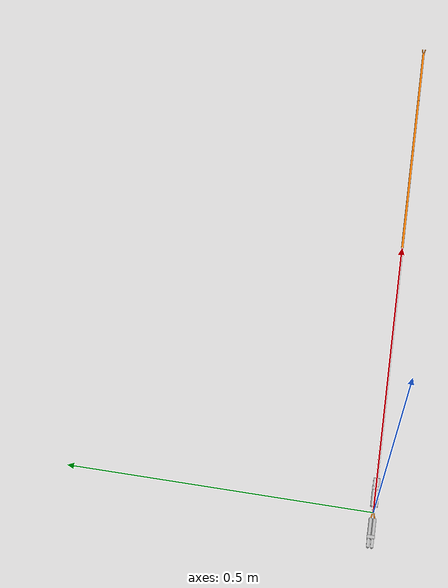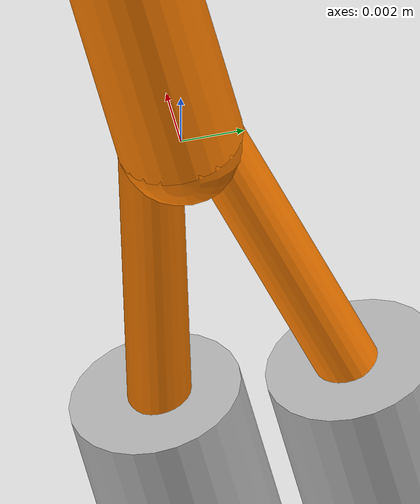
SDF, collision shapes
<?xml version="1.0" ?>
<sdf version="1.9">
  <model name="sfp_cable">
    <include merge="true">
      <uri>model://cable_base_a</uri>
    </include>
    <include>
      <name>plug_a</name>
      <uri>model://SFP Plug</uri>
      <pose relative_to="cable_connection_0">-0.038 0 0 0 0 1.57079</pose>
    </include>
    <include>
      <name>plug_b</name>
      <uri>model://SFP Plug</uri>
      <pose relative_to="cable_connection_1">0.038 0 0 0 0 -1.57079</pose>
    </include>
    <joint name="plug_0_joint" type="fixed">
      <parent>cable_connection_0</parent>
      <child>plug_a::sfp_plug_link</child>
    </joint>
    <joint name="plug_1_joint" type="fixed">
      <parent>cable_connection_1</parent>
      <child>plug_b::sfp_plug_link</child>
    </joint>
  </model>
</sdf>

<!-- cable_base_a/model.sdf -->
<!--
  THIS FILE IS AUTO-GENERATED FROM AN ERB TEMPLATE

  see instructions in 'path_to_ws/src/aic/aic_assets/scripts/cable.sdf.erb'
-->
<sdf version="1.9">
  <model name="cable">
    <link name="cable_end_0">
      <pose>0.000000 0.000000 0.000000 0.000000 -0.000000 0.000000</pose>
      <inertial>
        <pose>0.000000 0.000000 0.000000 0.000000 -0.000000 0.000000</pose>
        <mass>0.0375</mass>
        <inertia>
          <ixx>0.010000</ixx>
          <ixy>0.000000</ixy>
          <ixz>0.000000</ixz>
          <iyy>0.010000</iyy>
          <iyz>0.000000</iyz>
          <izz>0.010000</izz>
        </inertia>
      </inertial>
      <collision name="base_collision">
        <pose>0.000000 0.000000 0.000000 0.000000 0.000000 0.000000</pose>
        <geometry>
          <sphere>
            <radius>0.002</radius>
          </sphere>
        </geometry>
      </collision>
      <visual name="base_vis">
        <pose>0.000000 0.000000 0.000000 0.000000 0.000000 0.000000</pose>
        <geometry>
          <sphere>
            <radius>0.002</radius>
          </sphere>
        </geometry>
        <material>
          <diffuse>1.0 0.5 0.0</diffuse>
          <specular>0.2 0.2 0.2</specular>
          <pbr>
            <metal>
              <roughness>0.05</roughness>
              <metalness>0.01</metalness>
            </metal>
          </pbr>
        </material>
      </visual>
    </link>
    <joint name="joint_end_0" type="ball">
      <pose>0.00000 0.000000 -0.06 0.000000 0 0.000000</pose>
      <child>link_1</child>
      <parent>cable_end_0</parent>
      <axis>
        <dynamics>
          <damping>1.0</damping>
          <spring_stiffness>1.0</spring_stiffness>
        </dynamics>
      </axis>
    </joint>
    <link name="link_1">
      <pose>0.06 0.000000 0.000000 0.000000 1.570790 0.000000</pose>
      <inertial>
        <pose>0.000000 0.000000 0.000000 0.000000 -0.000000 0.000000</pose>
        <mass>0.0375</mass>
        <inertia>
          <ixx>0.010000</ixx>
          <ixy>0.000000</ixy>
          <ixz>0.000000</ixz>
          <iyy>0.010000</iyy>
          <iyz>0.000000</iyz>
          <izz>0.010000</izz>
        </inertia>
      </inertial>
      <collision name="link_1_collision">
        <pose>0.00000 0.000000 0.000000 0.000000 0 0.000000</pose>
        <geometry>
          <cylinder>
            <length>0.12</length>
            <radius>0.002</radius>
          </cylinder>
        </geometry>
      </collision>
      <visual name="link_1_vis">
        <pose>0.00000 0.000000 0.000000 0.000000 0 0.000000</pose>
        <geometry>
          <cylinder>
            <length>0.12</length>
            <radius>0.002</radius>
          </cylinder>
        </geometry>
        <material>
          <diffuse>1.0 0.5 0.0</diffuse>
          <specular>0.2 0.2 0.2</specular>
          <pbr>
            <metal>
              <roughness>0.05</roughness>
              <metalness>0.01</metalness>
            </metal>
          </pbr>
        </material>
      </visual>
      <collision name="sphere_1_collision">
        <pose>0.000000 0.000000 0.06 0.000000 -0.000000 0.000000</pose>
        <geometry>
          <sphere>
            <radius>0.002</radius>
          </sphere>
        </geometry>
      </collision>
      <visual name="sphere_1_vis">
        <pose>0.000000 0.000000 0.06 0.000000 -0.000000 0.000000</pose>
        <geometry>
          <sphere>
            <radius>0.002</radius>
          </sphere>
        </geometry>
        <material>
          <diffuse>1.0 0.5 0.0</diffuse>
          <specular>0.2 0.2 0.2</specular>
          <pbr>
            <metal>
              <roughness>0.05</roughness>
              <metalness>0.01</metalness>
            </metal>
          </pbr>
        </material>
      </visual>
    </link>
    <link name="link_2">
      <pose>0.18 0.000000 0.000000 0.000000 1.570790 0.000000</pose>
      <inertial>
        <pose>0.000000 0.000000 0.000000 0.000000 -0.000000 0.000000</pose>
        <mass>0.0375</mass>
        <inertia>
          <ixx>0.010000</ixx>
          <ixy>0.000000</ixy>
          <ixz>0.000000</ixz>
          <iyy>0.010000</iyy>
          <iyz>0.000000</iyz>
          <izz>0.010000</izz>
        </inertia>
      </inertial>
      <collision name="link_2_collision">
        <pose>0.00000 0.000000 0.000000 0.000000 0 0.000000</pose>
        <geometry>
          <cylinder>
            <length>0.12</length>
            <radius>0.002</radius>
          </cylinder>
        </geometry>
      </collision>
      <visual name="link_2_vis">
        <pose>0.00000 0.000000 0.000000 0.000000 0 0.000000</pose>
        <geometry>
          <cylinder>
            <length>0.12</length>
            <radius>0.002</radius>
          </cylinder>
        </geometry>
        <material>
          <diffuse>1.0 0.5 0.0</diffuse>
          <specular>0.2 0.2 0.2</specular>
          <pbr>
            <metal>
              <roughness>0.05</roughness>
              <metalness>0.01</metalness>
            </metal>
          </pbr>
        </material>
      </visual>
      <collision name="sphere_2_collision">
        <pose>0.000000 0.000000 0.06 0.000000 -0.000000 0.000000</pose>
        <geometry>
          <sphere>
            <radius>0.002</radius>
          </sphere>
        </geometry>
      </collision>
      <visual name="sphere_2_vis">
        <pose>0.000000 0.000000 0.06 0.000000 -0.000000 0.000000</pose>
        <geometry>
          <sphere>
            <radius>0.002</radius>
          </sphere>
        </geometry>
        <material>
          <diffuse>1.0 0.5 0.0</diffuse>
          <specular>0.2 0.2 0.2</specular>
          <pbr>
            <metal>
              <roughness>0.05</roughness>
              <metalness>0.01</metalness>
            </metal>
          </pbr>
        </material>
      </visual>
    </link>
    <link name="link_3">
      <pose>0.3 0.000000 0.000000 0.000000 1.570790 0.000000</pose>
      <inertial>
        <pose>0.000000 0.000000 0.000000 0.000000 -0.000000 0.000000</pose>
        <mass>0.0375</mass>
        <inertia>
          <ixx>0.010000</ixx>
          <ixy>0.000000</ixy>
          <ixz>0.000000</ixz>
          <iyy>0.010000</iyy>
          <iyz>0.000000</iyz>
          <izz>0.010000</izz>
        </inertia>
      </inertial>
      <collision name="link_3_collision">
        <pose>0.00000 0.000000 0.000000 0.000000 0 0.000000</pose>
        <geometry>
          <cylinder>
            <length>0.12</length>
            <radius>0.002</radius>
          </cylinder>
        </geometry>
      </collision>
      <visual name="link_3_vis">
        <pose>0.00000 0.000000 0.000000 0.000000 0 0.000000</pose>
        <geometry>
          <cylinder>
            <length>0.12</length>
            <radius>0.002</radius>
          </cylinder>
        </geometry>
        <material>
          <diffuse>1.0 0.5 0.0</diffuse>
          <specular>0.2 0.2 0.2</specular>
          <pbr>
            <metal>
              <roughness>0.05</roughness>
              <metalness>0.01</metalness>
            </metal>
          </pbr>
        </material>
      </visual>
      <collision name="sphere_3_collision">
        <pose>0.000000 0.000000 0.06 0.000000 -0.000000 0.000000</pose>
        <geometry>
          <sphere>
            <radius>0.002</radius>
          </sphere>
        </geometry>
      </collision>
      <visual name="sphere_3_vis">
        <pose>0.000000 0.000000 0.06 0.000000 -0.000000 0.000000</pose>
        <geometry>
          <sphere>
            <radius>0.002</radius>
          </sphere>
        </geometry>
        <material>
          <diffuse>1.0 0.5 0.0</diffuse>
          <specular>0.2 0.2 0.2</specular>
          <pbr>
            <metal>
              <roughness>0.05</roughness>
              <metalness>0.01</metalness>
            </metal>
          </pbr>
        </material>
      </visual>
    </link>
    <link name="link_4">
      <pose>0.42 0.000000 0.000000 0.000000 1.570790 0.000000</pose>
      <inertial>
        <pose>0.000000 0.000000 0.000000 0.000000 -0.000000 0.000000</pose>
        <mass>0.0375</mass>
        <inertia>
          <ixx>0.010000</ixx>
          <ixy>0.000000</ixy>
          <ixz>0.000000</ixz>
          <iyy>0.010000</iyy>
          <iyz>0.000000</iyz>
          <izz>0.010000</izz>
        </inertia>
      </inertial>
      <collision name="link_4_collision">
        <pose>0.00000 0.000000 0.000000 0.000000 0 0.000000</pose>
        <geometry>
          <cylinder>
            <length>0.12</length>
            <radius>0.002</radius>
          </cylinder>
        </geometry>
      </collision>
      <visual name="link_4_vis">
        <pose>0.00000 0.000000 0.000000 0.000000 0 0.000000</pose>
        <geometry>
          <cylinder>
            <length>0.12</length>
            <radius>0.002</radius>
          </cylinder>
        </geometry>
        <material>
          <diffuse>1.0 0.5 0.0</diffuse>
          <specular>0.2 0.2 0.2</specular>
          <pbr>
            <metal>
              <roughness>0.05</roughness>
              <metalness>0.01</metalness>
            </metal>
          </pbr>
        </material>
      </visual>
      <collision name="sphere_4_collision">
        <pose>0.000000 0.000000 0.06 0.000000 -0.000000 0.000000</pose>
        <geometry>
          <sphere>
            <radius>0.002</radius>
          </sphere>
        </geometry>
      </collision>
      <visual name="sphere_4_vis">
        <pose>0.000000 0.000000 0.06 0.000000 -0.000000 0.000000</pose>
        <geometry>
          <sphere>
            <radius>0.002</radius>
          </sphere>
        </geometry>
        <material>
          <diffuse>1.0 0.5 0.0</diffuse>
          <specular>0.2 0.2 0.2</specular>
          <pbr>
            <metal>
              <roughness>0.05</roughness>
              <metalness>0.01</metalness>
            </metal>
          </pbr>
        </material>
      </visual>
    </link>
    <link name="link_5">
      <pose>0.54 0.000000 0.000000 0.000000 1.570790 0.000000</pose>
      <inertial>
        <pose>0.000000 0.000000 0.000000 0.000000 -0.000000 0.000000</pose>
        <mass>0.0375</mass>
        <inertia>
          <ixx>0.010000</ixx>
          <ixy>0.000000</ixy>
          <ixz>0.000000</ixz>
          <iyy>0.010000</iyy>
          <iyz>0.000000</iyz>
          <izz>0.010000</izz>
        </inertia>
      </inertial>
      <collision name="link_5_collision">
        <pose>0.00000 0.000000 0.000000 0.000000 0 0.000000</pose>
        <geometry>
          <cylinder>
            <length>0.12</length>
            <radius>0.002</radius>
          </cylinder>
        </geometry>
      </collision>
      <visual name="link_5_vis">
        <pose>0.00000 0.000000 0.000000 0.000000 0 0.000000</pose>
        <geometry>
          <cylinder>
            <length>0.12</length>
            <radius>0.002</radius>
          </cylinder>
        </geometry>
        <material>
          <diffuse>1.0 0.5 0.0</diffuse>
          <specular>0.2 0.2 0.2</specular>
          <pbr>
            <metal>
              <roughness>0.05</roughness>
              <metalness>0.01</metalness>
            </metal>
          </pbr>
        </material>
      </visual>
      <collision name="sphere_5_collision">
        <pose>0.000000 0.000000 0.06 0.000000 -0.000000 0.000000</pose>
        <geometry>
          <sphere>
            <radius>0.002</radius>
          </sphere>
        </geometry>
      </collision>
      <visual name="sphere_5_vis">
        <pose>0.000000 0.000000 0.06 0.000000 -0.000000 0.000000</pose>
        <geometry>
          <sphere>
            <radius>0.002</radius>
          </sphere>
        </geometry>
        <material>
          <diffuse>1.0 0.5 0.0</diffuse>
          <specular>0.2 0.2 0.2</specular>
          <pbr>
            <metal>
              <roughness>0.05</roughness>
              <metalness>0.01</metalness>
            </metal>
          </pbr>
        </material>
      </visual>
    </link>
    <link name="link_6">
      <pose>0.6599999999999999 0.000000 0.000000 0.000000 1.570790 0.000000</pose>
      <inertial>
        <pose>0.000000 0.000000 0.000000 0.000000 -0.000000 0.000000</pose>
        <mass>0.0375</mass>
        <inertia>
          <ixx>0.010000</ixx>
          <ixy>0.000000</ixy>
          <ixz>0.000000</ixz>
          <iyy>0.010000</iyy>
          <iyz>0.000000</iyz>
          <izz>0.010000</izz>
        </inertia>
      </inertial>
      <collision name="link_6_collision">
        <pose>0.00000 0.000000 0.000000 0.000000 0 0.000000</pose>
        <geometry>
          <cylinder>
            <length>0.12</length>
            <radius>0.002</radius>
          </cylinder>
        </geometry>
      </collision>
      <visual name="link_6_vis">
        <pose>0.00000 0.000000 0.000000 0.000000 0 0.000000</pose>
        <geometry>
          <cylinder>
            <length>0.12</length>
            <radius>0.002</radius>
          </cylinder>
        </geometry>
        <material>
          <diffuse>1.0 0.5 0.0</diffuse>
          <specular>0.2 0.2 0.2</specular>
          <pbr>
            <metal>
              <roughness>0.05</roughness>
              <metalness>0.01</metalness>
            </metal>
          </pbr>
        </material>
      </visual>
      <collision name="sphere_6_collision">
        <pose>0.000000 0.000000 0.06 0.000000 -0.000000 0.000000</pose>
        <geometry>
          <sphere>
            <radius>0.002</radius>
          </sphere>
        </geometry>
      </collision>
      <visual name="sphere_6_vis">
        <pose>0.000000 0.000000 0.06 0.000000 -0.000000 0.000000</pose>
        <geometry>
          <sphere>
            <radius>0.002</radius>
          </sphere>
        </geometry>
        <material>
          <diffuse>1.0 0.5 0.0</diffuse>
          <specular>0.2 0.2 0.2</specular>
          <pbr>
            <metal>
              <roughness>0.05</roughness>
              <metalness>0.01</metalness>
            </metal>
          </pbr>
        </material>
      </visual>
    </link>
    <link name="link_7">
      <pose>0.78 0.000000 0.000000 0.000000 1.570790 0.000000</pose>
      <inertial>
        <pose>0.000000 0.000000 0.000000 0.000000 -0.000000 0.000000</pose>
        <mass>0.0375</mass>
        <inertia>
          <ixx>0.010000</ixx>
          <ixy>0.000000</ixy>
          <ixz>0.000000</ixz>
          <iyy>0.010000</iyy>
          <iyz>0.000000</iyz>
          <izz>0.010000</izz>
        </inertia>
      </inertial>
      <collision name="link_7_collision">
        <pose>0.00000 0.000000 0.000000 0.000000 0 0.000000</pose>
        <geometry>
          <cylinder>
            <length>0.12</length>
            <radius>0.002</radius>
          </cylinder>
        </geometry>
      </collision>
      <visual name="link_7_vis">
        <pose>0.00000 0.000000 0.000000 0.000000 0 0.000000</pose>
        <geometry>
          <cylinder>
            <length>0.12</length>
            <radius>0.002</radius>
          </cylinder>
        </geometry>
        <material>
          <diffuse>1.0 0.5 0.0</diffuse>
          <specular>0.2 0.2 0.2</specular>
          <pbr>
            <metal>
              <roughness>0.05</roughness>
              <metalness>0.01</metalness>
            </metal>
          </pbr>
        </material>
      </visual>
      <collision name="sphere_7_collision">
        <pose>0.000000 0.000000 0.06 0.000000 -0.000000 0.000000</pose>
        <geometry>
          <sphere>
            <radius>0.002</radius>
          </sphere>
        </geometry>
      </collision>
      <visual name="sphere_7_vis">
        <pose>0.000000 0.000000 0.06 0.000000 -0.000000 0.000000</pose>
        <geometry>
          <sphere>
            <radius>0.002</radius>
          </sphere>
        </geometry>
        <material>
          <diffuse>1.0 0.5 0.0</diffuse>
          <specular>0.2 0.2 0.2</specular>
          <pbr>
            <metal>
              <roughness>0.05</roughness>
              <metalness>0.01</metalness>
            </metal>
          </pbr>
        </material>
      </visual>
    </link>
    <link name="link_8">
      <pose>0.8999999999999999 0.000000 0.000000 0.000000 1.570790 0.000000</pose>
      <inertial>
        <pose>0.000000 0.000000 0.000000 0.000000 -0.000000 0.000000</pose>
        <mass>0.0375</mass>
        <inertia>
          <ixx>0.010000</ixx>
          <ixy>0.000000</ixy>
          <ixz>0.000000</ixz>
          <iyy>0.010000</iyy>
          <iyz>0.000000</iyz>
          <izz>0.010000</izz>
        </inertia>
      </inertial>
      <collision name="link_8_collision">
        <pose>0.00000 0.000000 0.000000 0.000000 0 0.000000</pose>
        <geometry>
          <cylinder>
            <length>0.12</length>
            <radius>0.002</radius>
          </cylinder>
        </geometry>
      </collision>
      <visual name="link_8_vis">
        <pose>0.00000 0.000000 0.000000 0.000000 0 0.000000</pose>
        <geometry>
          <cylinder>
            <length>0.12</length>
            <radius>0.002</radius>
          </cylinder>
        </geometry>
        <material>
          <diffuse>1.0 0.5 0.0</diffuse>
          <specular>0.2 0.2 0.2</specular>
          <pbr>
            <metal>
              <roughness>0.05</roughness>
              <metalness>0.01</metalness>
            </metal>
          </pbr>
        </material>
      </visual>
      <collision name="sphere_8_collision">
        <pose>0.000000 0.000000 0.06 0.000000 -0.000000 0.000000</pose>
        <geometry>
          <sphere>
            <radius>0.002</radius>
          </sphere>
        </geometry>
      </collision>
      <visual name="sphere_8_vis">
        <pose>0.000000 0.000000 0.06 0.000000 -0.000000 0.000000</pose>
        <geometry>
          <sphere>
            <radius>0.002</radius>
          </sphere>
        </geometry>
        <material>
          <diffuse>1.0 0.5 0.0</diffuse>
          <specular>0.2 0.2 0.2</specular>
          <pbr>
            <metal>
              <roughness>0.05</roughness>
              <metalness>0.01</metalness>
            </metal>
          </pbr>
        </material>
      </visual>
    </link>
    <joint name="joint_1" type="ball">
      <pose>0.00000 0.000000 -0.06 0.000000 0 0.000000</pose>
      <parent>link_1</parent>
      <child>link_2</child>
      <axis>
        <dynamics>
          <damping>1.0</damping>
          <spring_stiffness>1.0</spring_stiffness>
        </dynamics>
      </axis>
    </joint>
    <joint name="joint_2" type="ball">
      <pose>0.00000 0.000000 -0.06 0.000000 0 0.000000</pose>
      <parent>link_2</parent>
      <child>link_3</child>
      <axis>
        <dynamics>
          <damping>1.0</damping>
          <spring_stiffness>1.0</spring_stiffness>
        </dynamics>
      </axis>
    </joint>
    <joint name="joint_3" type="ball">
      <pose>0.00000 0.000000 -0.06 0.000000 0 0.000000</pose>
      <parent>link_3</parent>
      <child>link_4</child>
      <axis>
        <dynamics>
          <damping>1.0</damping>
          <spring_stiffness>1.0</spring_stiffness>
        </dynamics>
      </axis>
    </joint>
    <joint name="joint_4" type="ball">
      <pose>0.00000 0.000000 -0.06 0.000000 0 0.000000</pose>
      <parent>link_4</parent>
      <child>link_5</child>
      <axis>
        <dynamics>
          <damping>1.0</damping>
          <spring_stiffness>1.0</spring_stiffness>
        </dynamics>
      </axis>
    </joint>
    <joint name="joint_5" type="ball">
      <pose>0.00000 0.000000 -0.06 0.000000 0 0.000000</pose>
      <parent>link_5</parent>
      <child>link_6</child>
      <axis>
        <dynamics>
          <damping>1.0</damping>
          <spring_stiffness>1.0</spring_stiffness>
        </dynamics>
      </axis>
    </joint>
    <joint name="joint_6" type="ball">
      <pose>0.00000 0.000000 -0.06 0.000000 0 0.000000</pose>
      <parent>link_6</parent>
      <child>link_7</child>
      <axis>
        <dynamics>
          <damping>1.0</damping>
          <spring_stiffness>1.0</spring_stiffness>
        </dynamics>
      </axis>
    </joint>
    <joint name="joint_7" type="ball">
      <pose>0.00000 0.000000 -0.06 0.000000 0 0.000000</pose>
      <parent>link_7</parent>
      <child>link_8</child>
      <axis>
        <dynamics>
          <damping>1.0</damping>
          <spring_stiffness>1.0</spring_stiffness>
        </dynamics>
      </axis>
    </joint>
    <frame name="cable_mount_base">
      <pose>0 0 0 0 0 0</pose>
    </frame>
    <frame name="cable_mount_end">
      <pose>0.96 0 0 0 0 0</pose>
    </frame>
    <link name="cable_connection_0">
      <inertial>
        <pose>0.000000 0.000000 0.000000 0.000000 -0.000000 0.000000</pose>
        <mass>0.01</mass>
        <inertia>
          <ixx>0.010000</ixx>
          <ixy>0.000000</ixy>
          <ixz>0.000000</ixz>
          <iyy>0.010000</iyy>
          <iyz>0.000000</iyz>
          <izz>0.010000</izz>
        </inertia>
      </inertial>
      <pose relative_to="cable_mount_base">0 0 0 0 0 0</pose>
      <collision name="collision_0">
        <pose>-0.005099019513592785 0.002 0 0.19739555984988078 1.57079 0</pose>
        <geometry>
          <cylinder>
            <radius>0.001</radius>
            <length>0.01019803902718557</length>
          </cylinder>
        </geometry>
      </collision>
      <visual name="visual_0">
        <pose>-0.005099019513592785 0.002 0 0.19739555984988078 1.57079 0</pose>
        <geometry>
          <cylinder>
            <radius>0.001</radius>
            <length>0.01019803902718557</length>
          </cylinder>
        </geometry>
        <material>
          <diffuse>1.0 0.5 0.0</diffuse>
          <specular>0.2 0.2 0.2</specular>
          <pbr>
            <metal>
              <roughness>0.05</roughness>
              <metalness>0.01</metalness>
            </metal>
          </pbr>
        </material>
      </visual>
      <collision name="collision_1">
        <pose>-0.005099019513592785 -0.002 0 -0.19739555984988078 1.57079 0</pose>
        <geometry>
          <cylinder>
            <radius>0.001</radius>
            <length>0.01019803902718557</length>
          </cylinder>
        </geometry>
      </collision>
      <visual name="visual_1">
        <pose>-0.005099019513592785 -0.002 0 -0.19739555984988078 1.57079 0</pose>
        <geometry>
          <cylinder>
            <radius>0.001</radius>
            <length>0.01019803902718557</length>
          </cylinder>
        </geometry>
        <material>
          <diffuse>1.0 0.5 0.0</diffuse>
          <specular>0.2 0.2 0.2</specular>
          <pbr>
            <metal>
              <roughness>0.05</roughness>
              <metalness>0.01</metalness>
            </metal>
          </pbr>
        </material>
      </visual>
    </link>
    <link name="cable_connection_1">
      <inertial>
        <pose>0.000000 0.000000 0.000000 0.000000 -0.000000 0.000000</pose>
        <mass>0.01</mass>
        <inertia>
          <ixx>0.010000</ixx>
          <ixy>0.000000</ixy>
          <ixz>0.000000</ixz>
          <iyy>0.010000</iyy>
          <iyz>0.000000</iyz>
          <izz>0.010000</izz>
        </inertia>
      </inertial>
      <pose relative_to="cable_mount_end">0 0 0 0 0 0</pose>
      <collision name="collision_0">
        <pose>0.005099019513592785 -0.002 0 0.19739555984988078 1.57079 0</pose>
        <geometry>
          <cylinder>
            <radius>0.001</radius>
            <length>0.01019803902718557</length>
          </cylinder>
        </geometry>
      </collision>
      <visual name="visual_0">
        <pose>0.005099019513592785 -0.002 0 0.19739555984988078 1.57079 0</pose>
        <geometry>
          <cylinder>
            <radius>0.001</radius>
            <length>0.01019803902718557</length>
          </cylinder>
        </geometry>
        <material>
          <diffuse>1.0 0.5 0.0</diffuse>
          <specular>0.2 0.2 0.2</specular>
          <pbr>
            <metal>
              <roughness>0.05</roughness>
              <metalness>0.01</metalness>
            </metal>
          </pbr>
        </material>
      </visual>
      <collision name="collision_1">
        <pose>0.005099019513592785 0.002 0 -0.19739555984988078 1.57079 0</pose>
        <geometry>
          <cylinder>
            <radius>0.001</radius>
            <length>0.01019803902718557</length>
          </cylinder>
        </geometry>
      </collision>
      <visual name="visual_1">
        <pose>0.005099019513592785 0.002 0 -0.19739555984988078 1.57079 0</pose>
        <geometry>
          <cylinder>
            <radius>0.001</radius>
            <length>0.01019803902718557</length>
          </cylinder>
        </geometry>
        <material>
          <diffuse>1.0 0.5 0.0</diffuse>
          <specular>0.2 0.2 0.2</specular>
          <pbr>
            <metal>
              <roughness>0.05</roughness>
              <metalness>0.01</metalness>
            </metal>
          </pbr>
        </material>
      </visual>
    </link>
    <joint name="joint_connection_end_0" type="ball">
      <pose>0.00000 0.000000 0 0.000000 0 0.000000</pose>
      <parent>cable_end_0</parent>
      <child>cable_connection_0</child>
      <axis>
        <dynamics>
          <damping>1.0</damping>
          <spring_stiffness>1.0</spring_stiffness>
        </dynamics>
      </axis>
    </joint>
    <joint name="joint_connection_end_1" type="ball">
      <pose>0.00000 0.000000 0 0.000000 0 0.000000</pose>
      <parent>link_8</parent>
      <child>cable_connection_1</child>
      <axis>
        <dynamics>
          <damping>1.0</damping>
          <spring_stiffness>1.0</spring_stiffness>
        </dynamics>
      </axis>
    </joint>
  </model>
</sdf>

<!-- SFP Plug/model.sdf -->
<sdf version="1.9">
  <model name="SFP Plug">
    <link name="sfp_plug_link">
      <inertial auto="true">
        <mass>0.01</mass>
      </inertial>
      <visual name="sfp_plug_visual">
        <geometry>
          <mesh>
            <uri>sfp_plug_visual.glb</uri>
          </mesh>
        </geometry>
      </visual>
      <collision name="cube_collider_box">
        <pose>0.003125 0.00985 0.0 -1.570796 1.570796 0.0</pose>
        <geometry>
          <box>
            <size>0.0045 0.0045 0.0197</size>
          </box>
        </geometry>
      </collision>
      <collision name="cube_collider_box.001">
        <pose>-0.003125 0.00985 -0.0 -1.570796 1.570796 0.0</pose>
        <geometry>
          <box>
            <size>0.0045 0.0045 0.0197</size>
          </box>
        </geometry>
      </collision>
      <collision name="cube001_collider_box">
        <pose>-0.0 0.002778 0.001434 -0.0 3.141593 -0.0</pose>
        <geometry>
          <box>
            <size>0.012353 0.00555 0.00325</size>
          </box>
        </geometry>
      </collision>
      <collision name="cube001_collider_box.001">
        <pose>-0.0 0.002778 -0.000323 -0.0 3.141593 -0.0</pose>
        <geometry>
          <box>
            <size>0.00665 0.00555 0.005852</size>
          </box>
        </geometry>
      </collision>
      <collision name="cylinder001_collider_cylinder">
        <pose>0.003125 0.0197 0.0 1.570796 0.0 0.0</pose>
        <geometry>
          <cylinder>
            <radius>0.000625</radius>
            <length>0.003004</length>
          </cylinder>
        </geometry>
      </collision>
      <collision name="cylinder_collider_cylinder">
        <pose>-0.003125 0.0197 0.0 1.570796 0.0 0.0</pose>
        <geometry>
          <cylinder>
            <radius>0.000625</radius>
            <length>0.003004</length>
          </cylinder>
        </geometry>
      </collision>
      <collision name="cylinder003_collider_cylinder">
        <pose>0.003125 -0.014001 -0.0 1.570796 0.0 0.0</pose>
        <geometry>
          <cylinder>
            <radius>0.00275</radius>
            <length>0.028</length>
          </cylinder>
        </geometry>
      </collision>
      <collision name="cylinder002_collider_cylinder">
        <pose>-0.003125 -0.014001 -0.0 1.570796 0.0 0.0</pose>
        <geometry>
          <cylinder>
            <radius>0.00275</radius>
            <length>0.028</length>
          </cylinder>
        </geometry>
      </collision>
    </link>
  </model>
</sdf>
